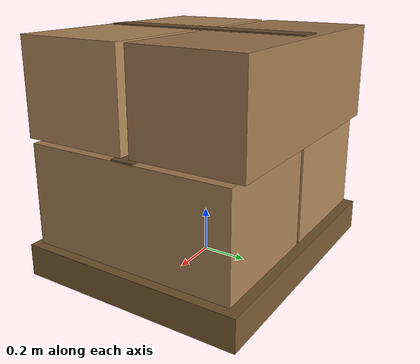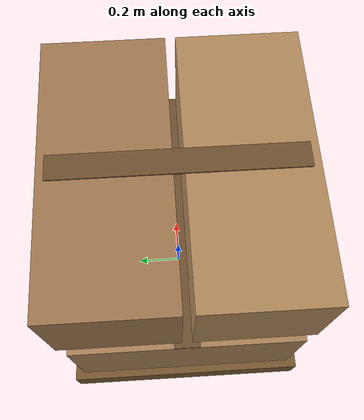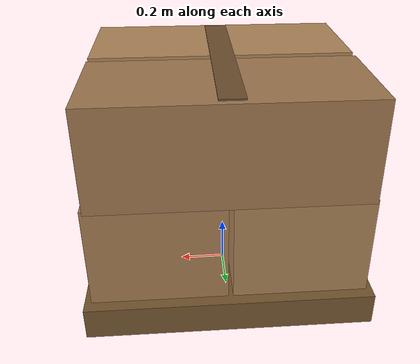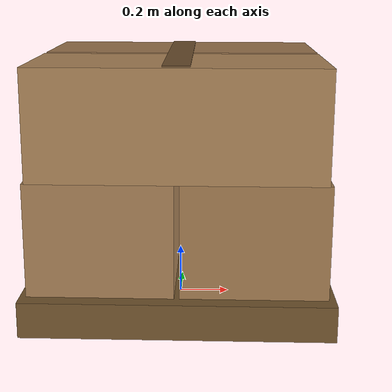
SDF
<?xml version="1.0" ?>
<sdf version="1.9">
  <model name="pallet_stack">
    <static>true</static>
    <link name="link">
      <collision name="collision">
        <pose>0 0 0.525 0 0 0</pose>
        <geometry><box><size>1.2 1.0 1.05</size></box></geometry>
      </collision>

      <visual name="pallet">
        <pose>0 0 0.07 0 0 0</pose>
        <geometry><box><size>1.2 1.0 0.14</size></box></geometry>
        <material><ambient>0.42 0.31 0.17 1</ambient><diffuse>0.47 0.35 0.19 1</diffuse></material>
      </visual>

      <!-- lower course: two cartons side by side -->
      <visual name="box_l0">
        <pose>-0.29 0 0.37 0 0 0</pose>
        <geometry><box><size>0.56 0.92 0.44</size></box></geometry>
        <material><ambient>0.62 0.47 0.32 1</ambient><diffuse>0.68 0.52 0.35 1</diffuse></material>
      </visual>
      <visual name="box_r0">
        <pose>0.29 0 0.37 0 0 0</pose>
        <geometry><box><size>0.56 0.92 0.44</size></box></geometry>
        <material><ambient>0.60 0.45 0.30 1</ambient><diffuse>0.66 0.50 0.33 1</diffuse></material>
      </visual>

      <!-- upper course, rotated 90 deg the way real stacks are interlocked -->
      <visual name="box_l1">
        <pose>0 -0.26 0.81 0 0 0</pose>
        <geometry><box><size>1.10 0.48 0.42</size></box></geometry>
        <material><ambient>0.64 0.49 0.33 1</ambient><diffuse>0.70 0.54 0.36 1</diffuse></material>
      </visual>
      <visual name="box_r1">
        <pose>0 0.26 0.81 0 0 0</pose>
        <geometry><box><size>1.10 0.48 0.42</size></box></geometry>
        <material><ambient>0.58 0.44 0.29 1</ambient><diffuse>0.64 0.48 0.32 1</diffuse></material>
      </visual>

      <!-- packing-tape seams, inset so their faces sit strictly inside the
           cartons' own rather than coincident with them -->
      <visual name="tape_lower">
        <pose>0 0 0.592 0 0 0</pose>
        <geometry><box><size>1.14 0.10 0.008</size></box></geometry>
        <material><ambient>0.40 0.29 0.17 1</ambient><diffuse>0.44 0.32 0.19 1</diffuse></material>
      </visual>
      <visual name="tape_upper">
        <pose>0 0 1.022 0 0 0</pose>
        <geometry><box><size>0.10 0.94 0.008</size></box></geometry>
        <material><ambient>0.40 0.29 0.17 1</ambient><diffuse>0.44 0.32 0.19 1</diffuse></material>
      </visual>
    </link>
  </model>
</sdf>
